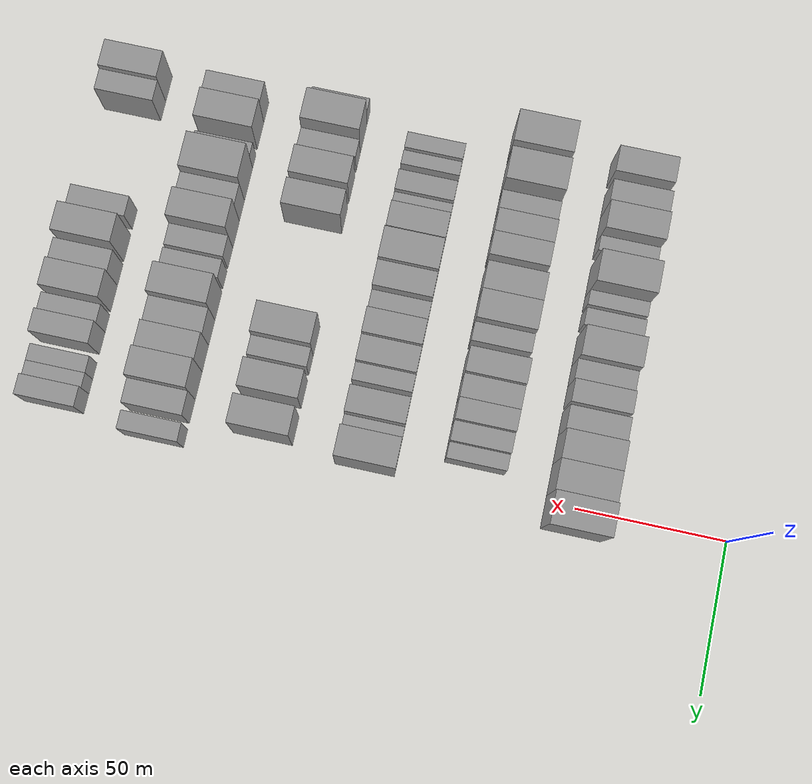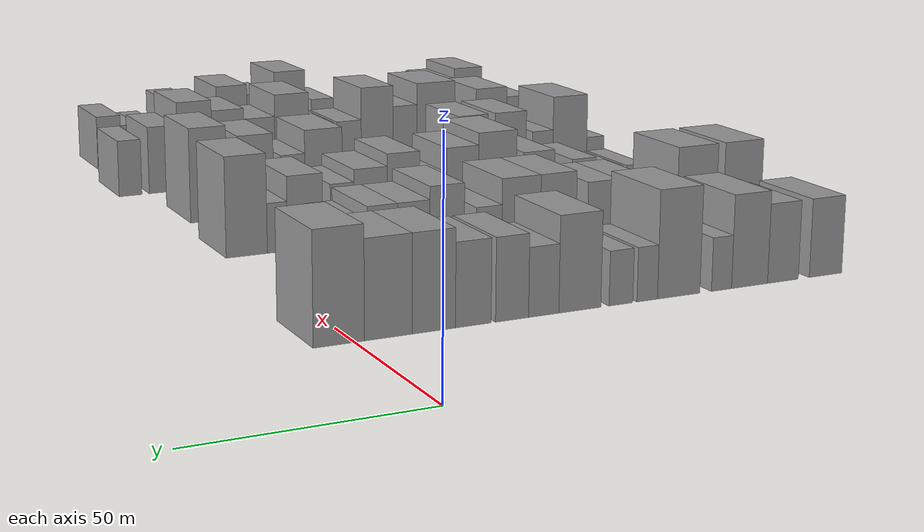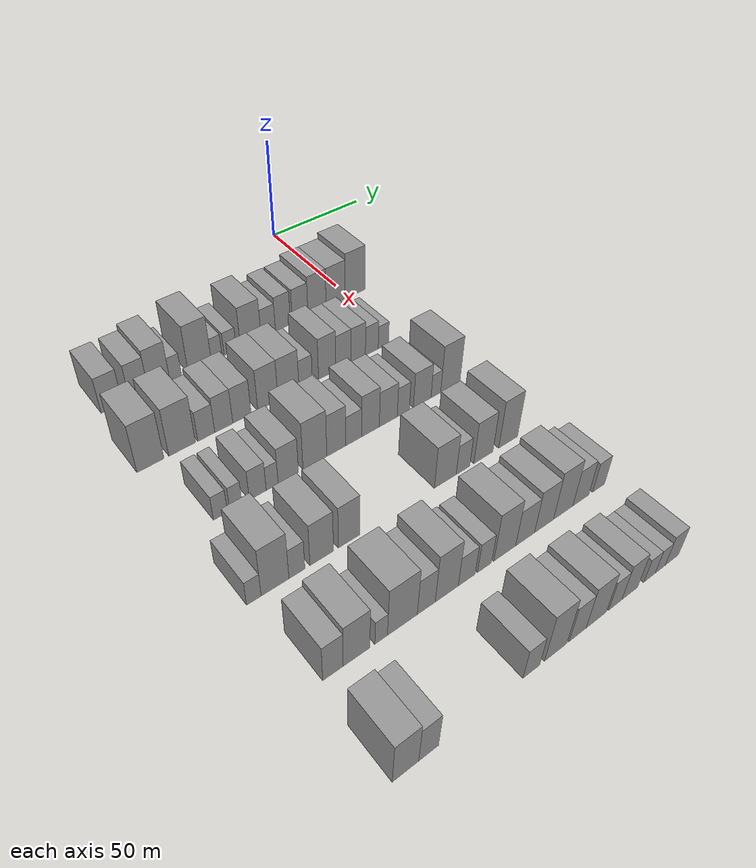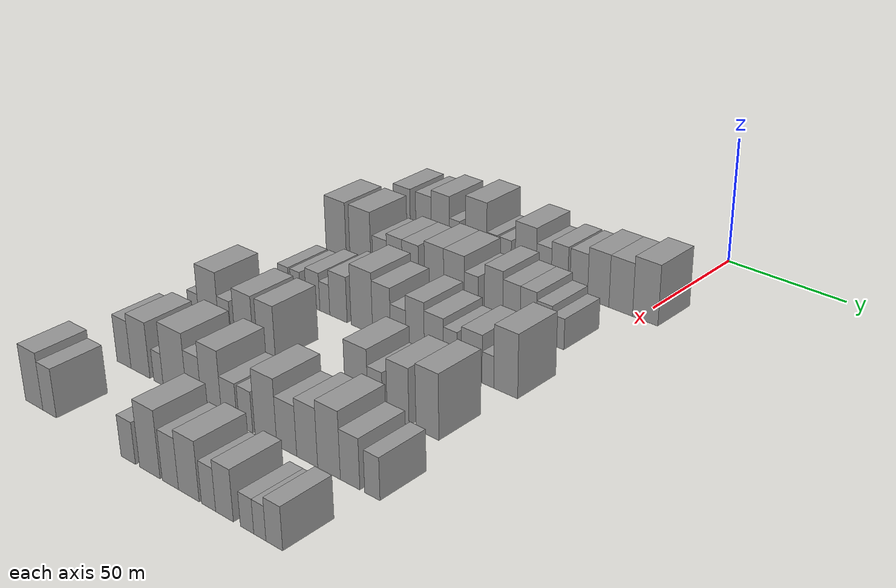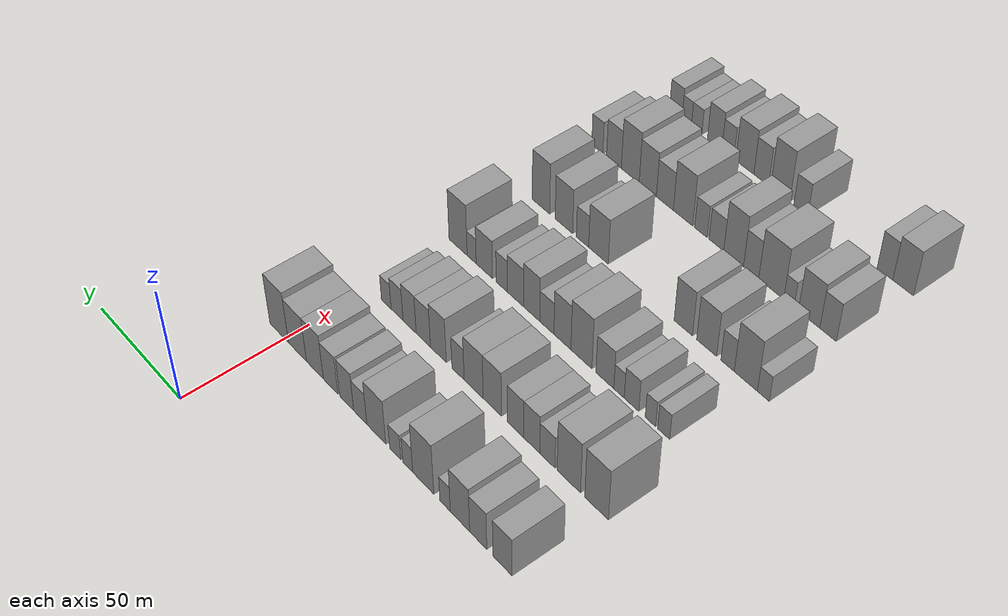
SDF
<sdf version="1.6">
 <world name="default">
  <model name="building_53">
   <static>1</static>
   <pose>50.0000 -114.6435 0 0.000000 0.000000 0.000000</pose>
   <link name="link">
    <pose>0 0 9.00 0 0 0</pose>
    <collision name="collision"><geometry><box><size>20.0000 8.9400 18.0000</size></box></geometry></collision>
    <visual name="visual">
     <cast_shadows>0</cast_shadows>
     <geometry><box><size>20.0000 8.9400 18.0000</size></box></geometry>
     <material>
      <script>
       <uri>model://grey_wall/materials/scripts</uri>
       <uri>model://grey_wall/materials/textures</uri>
       <name>vrc/grey_wall</name>
      </script>
     </material>
    </visual>
   </link>
  </model>
  <model name="building_54">
   <static>1</static>
   <pose>50.0000 -103.0503 0 0.000000 0.000000 0.000000</pose>
   <link name="link">
    <pose>0 0 9.00 0 0 0</pose>
    <collision name="collision"><geometry><box><size>20.0000 8.2464 18.0000</size></box></geometry></collision>
    <visual name="visual">
     <cast_shadows>0</cast_shadows>
     <geometry><box><size>20.0000 8.2464 18.0000</size></box></geometry>
     <material>
      <script>
       <uri>model://grey_wall/materials/scripts</uri>
       <uri>model://grey_wall/materials/textures</uri>
       <name>vrc/grey_wall</name>
      </script>
     </material>
    </visual>
   </link>
  </model>
  <model name="building_55">
   <static>1</static>
   <pose>50.0000 -94.1643 0 0.000000 0.000000 0.000000</pose>
   <link name="link">
    <pose>0 0 10.50 0 0 0</pose>
    <collision name="collision"><geometry><box><size>20.0000 9.5256 21.0000</size></box></geometry></collision>
    <visual name="visual">
     <cast_shadows>0</cast_shadows>
     <geometry><box><size>20.0000 9.5256 21.0000</size></box></geometry>
     <material>
      <script>
       <uri>model://grey_wall/materials/scripts</uri>
       <uri>model://grey_wall/materials/textures</uri>
       <name>vrc/grey_wall</name>
      </script>
     </material>
    </visual>
   </link>
  </model>
  <model name="building_56">
   <static>1</static>
   <pose>50.0000 -86.7919 0 0.000000 0.000000 0.000000</pose>
   <link name="link">
    <pose>0 0 6.00 0 0 0</pose>
    <collision name="collision"><geometry><box><size>20.0000 5.2192 12.0000</size></box></geometry></collision>
    <visual name="visual">
     <cast_shadows>0</cast_shadows>
     <geometry><box><size>20.0000 5.2192 12.0000</size></box></geometry>
     <material>
      <script>
       <uri>model://grey_wall/materials/scripts</uri>
       <uri>model://grey_wall/materials/textures</uri>
       <name>vrc/grey_wall</name>
      </script>
     </material>
    </visual>
   </link>
  </model>
  <model name="building_57">
   <static>1</static>
   <pose>50.0000 -75.7936 0 0.000000 0.000000 0.000000</pose>
   <link name="link">
    <pose>0 0 12.00 0 0 0</pose>
    <collision name="collision"><geometry><box><size>20.0000 10.7773 24.0000</size></box></geometry></collision>
    <visual name="visual">
     <cast_shadows>0</cast_shadows>
     <geometry><box><size>20.0000 10.7773 24.0000</size></box></geometry>
     <material>
      <script>
       <uri>model://grey_wall/materials/scripts</uri>
       <uri>model://grey_wall/materials/textures</uri>
       <name>vrc/grey_wall</name>
      </script>
     </material>
    </visual>
   </link>
  </model>
  <model name="building_58">
   <static>1</static>
   <pose>50.0000 -67.8428 0 0.000000 0.000000 0.000000</pose>
   <link name="link">
    <pose>0 0 6.00 0 0 0</pose>
    <collision name="collision"><geometry><box><size>20.0000 5.1243 12.0000</size></box></geometry></collision>
    <visual name="visual">
     <cast_shadows>0</cast_shadows>
     <geometry><box><size>20.0000 5.1243 12.0000</size></box></geometry>
     <material>
      <script>
       <uri>model://grey_wall/materials/scripts</uri>
       <uri>model://grey_wall/materials/textures</uri>
       <name>vrc/grey_wall</name>
      </script>
     </material>
    </visual>
   </link>
  </model>
  <model name="building_59">
   <static>1</static>
   <pose>50.0000 -61.3414 0 0.000000 0.000000 0.000000</pose>
   <link name="link">
    <pose>0 0 6.00 0 0 0</pose>
    <collision name="collision"><geometry><box><size>20.0000 5.8786 12.0000</size></box></geometry></collision>
    <visual name="visual">
     <cast_shadows>0</cast_shadows>
     <geometry><box><size>20.0000 5.8786 12.0000</size></box></geometry>
     <material>
      <script>
       <uri>model://grey_wall/materials/scripts</uri>
       <uri>model://grey_wall/materials/textures</uri>
       <name>vrc/grey_wall</name>
      </script>
     </material>
    </visual>
   </link>
  </model>
  <model name="building_60">
   <static>1</static>
   <pose>50.0000 -51.3345 0 0.000000 0.000000 0.000000</pose>
   <link name="link">
    <pose>0 0 10.50 0 0 0</pose>
    <collision name="collision"><geometry><box><size>20.0000 10.1353 21.0000</size></box></geometry></collision>
    <visual name="visual">
     <cast_shadows>0</cast_shadows>
     <geometry><box><size>20.0000 10.1353 21.0000</size></box></geometry>
     <material>
      <script>
       <uri>model://grey_wall/materials/scripts</uri>
       <uri>model://grey_wall/materials/textures</uri>
       <name>vrc/grey_wall</name>
      </script>
     </material>
    </visual>
   </link>
  </model>
  <model name="building_61">
   <static>1</static>
   <pose>50.0000 -42.6842 0 0.000000 0.000000 0.000000</pose>
   <link name="link">
    <pose>0 0 7.50 0 0 0</pose>
    <collision name="collision"><geometry><box><size>20.0000 7.1653 15.0000</size></box></geometry></collision>
    <visual name="visual">
     <cast_shadows>0</cast_shadows>
     <geometry><box><size>20.0000 7.1653 15.0000</size></box></geometry>
     <material>
      <script>
       <uri>model://grey_wall/materials/scripts</uri>
       <uri>model://grey_wall/materials/textures</uri>
       <name>vrc/grey_wall</name>
      </script>
     </material>
    </visual>
   </link>
  </model>
  <model name="building_62">
   <static>1</static>
   <pose>50.0000 -35.2547 0 0.000000 0.000000 0.000000</pose>
   <link name="link">
    <pose>0 0 9.00 0 0 0</pose>
    <collision name="collision"><geometry><box><size>20.0000 7.6937 18.0000</size></box></geometry></collision>
    <visual name="visual">
     <cast_shadows>0</cast_shadows>
     <geometry><box><size>20.0000 7.6937 18.0000</size></box></geometry>
     <material>
      <script>
       <uri>model://grey_wall/materials/scripts</uri>
       <uri>model://grey_wall/materials/textures</uri>
       <name>vrc/grey_wall</name>
      </script>
     </material>
    </visual>
   </link>
  </model>
  <model name="building_63">
   <static>1</static>
   <pose>50.0000 -26.3390 0 0.000000 0.000000 0.000000</pose>
   <link name="link">
    <pose>0 0 9.00 0 0 0</pose>
    <collision name="collision"><geometry><box><size>20.0000 8.1377 18.0000</size></box></geometry></collision>
    <visual name="visual">
     <cast_shadows>0</cast_shadows>
     <geometry><box><size>20.0000 8.1377 18.0000</size></box></geometry>
     <material>
      <script>
       <uri>model://grey_wall/materials/scripts</uri>
       <uri>model://grey_wall/materials/textures</uri>
       <name>vrc/grey_wall</name>
      </script>
     </material>
    </visual>
   </link>
  </model>
  <model name="building_64">
   <static>1</static>
   <pose>50.0000 -17.4439 0 0.000000 0.000000 0.000000</pose>
   <link name="link">
    <pose>0 0 10.50 0 0 0</pose>
    <collision name="collision"><geometry><box><size>20.0000 9.6526 21.0000</size></box></geometry></collision>
    <visual name="visual">
     <cast_shadows>0</cast_shadows>
     <geometry><box><size>20.0000 9.6526 21.0000</size></box></geometry>
     <material>
      <script>
       <uri>model://grey_wall/materials/scripts</uri>
       <uri>model://grey_wall/materials/textures</uri>
       <name>vrc/grey_wall</name>
      </script>
     </material>
    </visual>
   </link>
  </model>
  <model name="building_65">
   <static>1</static>
   <pose>50.0000 -7.3971 0 0.000000 0.000000 0.000000</pose>
   <link name="link">
    <pose>0 0 10.50 0 0 0</pose>
    <collision name="collision"><geometry><box><size>20.0000 10.4410 21.0000</size></box></geometry></collision>
    <visual name="visual">
     <cast_shadows>0</cast_shadows>
     <geometry><box><size>20.0000 10.4410 21.0000</size></box></geometry>
     <material>
      <script>
       <uri>model://grey_wall/materials/scripts</uri>
       <uri>model://grey_wall/materials/textures</uri>
       <name>vrc/grey_wall</name>
      </script>
     </material>
    </visual>
   </link>
  </model>
  <model name="building_66">
   <static>1</static>
   <pose>50.0000 3.3066 0 0.000000 0.000000 0.000000</pose>
   <link name="link">
    <pose>0 0 12.00 0 0 0</pose>
    <collision name="collision"><geometry><box><size>20.0000 10.9665 24.0000</size></box></geometry></collision>
    <visual name="visual">
     <cast_shadows>0</cast_shadows>
     <geometry><box><size>20.0000 10.9665 24.0000</size></box></geometry>
     <material>
      <script>
       <uri>model://grey_wall/materials/scripts</uri>
       <uri>model://grey_wall/materials/textures</uri>
       <name>vrc/grey_wall</name>
      </script>
     </material>
    </visual>
   </link>
  </model>
  <model name="building_172">
   <static>1</static>
   <pose>85.0000 -116.4584 0 0.000000 0.000000 0.000000</pose>
   <link name="link">
    <pose>0 0 12.00 0 0 0</pose>
    <collision name="collision"><geometry><box><size>20.0000 10.9451 24.0000</size></box></geometry></collision>
    <visual name="visual">
     <cast_shadows>0</cast_shadows>
     <geometry><box><size>20.0000 10.9451 24.0000</size></box></geometry>
     <material>
      <script>
       <uri>model://grey_wall/materials/scripts</uri>
       <uri>model://grey_wall/materials/textures</uri>
       <name>vrc/grey_wall</name>
      </script>
     </material>
    </visual>
   </link>
  </model>
  <model name="building_173">
   <static>1</static>
   <pose>85.0000 -103.4264 0 0.000000 0.000000 0.000000</pose>
   <link name="link">
    <pose>0 0 12.00 0 0 0</pose>
    <collision name="collision"><geometry><box><size>20.0000 11.1188 24.0000</size></box></geometry></collision>
    <visual name="visual">
     <cast_shadows>0</cast_shadows>
     <geometry><box><size>20.0000 11.1188 24.0000</size></box></geometry>
     <material>
      <script>
       <uri>model://grey_wall/materials/scripts</uri>
       <uri>model://grey_wall/materials/textures</uri>
       <name>vrc/grey_wall</name>
      </script>
     </material>
    </visual>
   </link>
  </model>
  <model name="building_174">
   <static>1</static>
   <pose>85.0000 -93.2065 0 0.000000 0.000000 0.000000</pose>
   <link name="link">
    <pose>0 0 7.50 0 0 0</pose>
    <collision name="collision"><geometry><box><size>20.0000 7.3210 15.0000</size></box></geometry></collision>
    <visual name="visual">
     <cast_shadows>0</cast_shadows>
     <geometry><box><size>20.0000 7.3210 15.0000</size></box></geometry>
     <material>
      <script>
       <uri>model://grey_wall/materials/scripts</uri>
       <uri>model://grey_wall/materials/textures</uri>
       <name>vrc/grey_wall</name>
      </script>
     </material>
    </visual>
   </link>
  </model>
  <model name="building_175">
   <static>1</static>
   <pose>85.0000 -85.6010 0 0.000000 0.000000 0.000000</pose>
   <link name="link">
    <pose>0 0 9.00 0 0 0</pose>
    <collision name="collision"><geometry><box><size>20.0000 7.8901 18.0000</size></box></geometry></collision>
    <visual name="visual">
     <cast_shadows>0</cast_shadows>
     <geometry><box><size>20.0000 7.8901 18.0000</size></box></geometry>
     <material>
      <script>
       <uri>model://grey_wall/materials/scripts</uri>
       <uri>model://grey_wall/materials/textures</uri>
       <name>vrc/grey_wall</name>
      </script>
     </material>
    </visual>
   </link>
  </model>
  <model name="building_176">
   <static>1</static>
   <pose>85.0000 -77.5546 0 0.000000 0.000000 0.000000</pose>
   <link name="link">
    <pose>0 0 9.00 0 0 0</pose>
    <collision name="collision"><geometry><box><size>20.0000 8.2029 18.0000</size></box></geometry></collision>
    <visual name="visual">
     <cast_shadows>0</cast_shadows>
     <geometry><box><size>20.0000 8.2029 18.0000</size></box></geometry>
     <material>
      <script>
       <uri>model://grey_wall/materials/scripts</uri>
       <uri>model://grey_wall/materials/textures</uri>
       <name>vrc/grey_wall</name>
      </script>
     </material>
    </visual>
   </link>
  </model>
  <model name="building_177">
   <static>1</static>
   <pose>85.0000 -65.7735 0 0.000000 0.000000 0.000000</pose>
   <link name="link">
    <pose>0 0 10.50 0 0 0</pose>
    <collision name="collision"><geometry><box><size>20.0000 9.3593 21.0000</size></box></geometry></collision>
    <visual name="visual">
     <cast_shadows>0</cast_shadows>
     <geometry><box><size>20.0000 9.3593 21.0000</size></box></geometry>
     <material>
      <script>
       <uri>model://grey_wall/materials/scripts</uri>
       <uri>model://grey_wall/materials/textures</uri>
       <name>vrc/grey_wall</name>
      </script>
     </material>
    </visual>
   </link>
  </model>
  <model name="building_178">
   <static>1</static>
   <pose>85.0000 -56.1351 0 0.000000 0.000000 0.000000</pose>
   <link name="link">
    <pose>0 0 10.50 0 0 0</pose>
    <collision name="collision"><geometry><box><size>20.0000 9.9176 21.0000</size></box></geometry></collision>
    <visual name="visual">
     <cast_shadows>0</cast_shadows>
     <geometry><box><size>20.0000 9.9176 21.0000</size></box></geometry>
     <material>
      <script>
       <uri>model://grey_wall/materials/scripts</uri>
       <uri>model://grey_wall/materials/textures</uri>
       <name>vrc/grey_wall</name>
      </script>
     </material>
    </visual>
   </link>
  </model>
  <model name="building_179">
   <static>1</static>
   <pose>85.0000 -47.9434 0 0.000000 0.000000 0.000000</pose>
   <link name="link">
    <pose>0 0 7.50 0 0 0</pose>
    <collision name="collision"><geometry><box><size>20.0000 6.4659 15.0000</size></box></geometry></collision>
    <visual name="visual">
     <cast_shadows>0</cast_shadows>
     <geometry><box><size>20.0000 6.4659 15.0000</size></box></geometry>
     <material>
      <script>
       <uri>model://grey_wall/materials/scripts</uri>
       <uri>model://grey_wall/materials/textures</uri>
       <name>vrc/grey_wall</name>
      </script>
     </material>
    </visual>
   </link>
  </model>
  <model name="building_180">
   <static>1</static>
   <pose>85.0000 -37.4590 0 0.000000 0.000000 0.000000</pose>
   <link name="link">
    <pose>0 0 10.50 0 0 0</pose>
    <collision name="collision"><geometry><box><size>20.0000 8.5029 21.0000</size></box></geometry></collision>
    <visual name="visual">
     <cast_shadows>0</cast_shadows>
     <geometry><box><size>20.0000 8.5029 21.0000</size></box></geometry>
     <material>
      <script>
       <uri>model://grey_wall/materials/scripts</uri>
       <uri>model://grey_wall/materials/textures</uri>
       <name>vrc/grey_wall</name>
      </script>
     </material>
    </visual>
   </link>
  </model>
  <model name="building_181">
   <static>1</static>
   <pose>85.0000 -29.2790 0 0.000000 0.000000 0.000000</pose>
   <link name="link">
    <pose>0 0 9.00 0 0 0</pose>
    <collision name="collision"><geometry><box><size>20.0000 7.8571 18.0000</size></box></geometry></collision>
    <visual name="visual">
     <cast_shadows>0</cast_shadows>
     <geometry><box><size>20.0000 7.8571 18.0000</size></box></geometry>
     <material>
      <script>
       <uri>model://grey_wall/materials/scripts</uri>
       <uri>model://grey_wall/materials/textures</uri>
       <name>vrc/grey_wall</name>
      </script>
     </material>
    </visual>
   </link>
  </model>
  <model name="building_182">
   <static>1</static>
   <pose>85.0000 -21.7177 0 0.000000 0.000000 0.000000</pose>
   <link name="link">
    <pose>0 0 9.00 0 0 0</pose>
    <collision name="collision"><geometry><box><size>20.0000 7.2654 18.0000</size></box></geometry></collision>
    <visual name="visual">
     <cast_shadows>0</cast_shadows>
     <geometry><box><size>20.0000 7.2654 18.0000</size></box></geometry>
     <material>
      <script>
       <uri>model://grey_wall/materials/scripts</uri>
       <uri>model://grey_wall/materials/textures</uri>
       <name>vrc/grey_wall</name>
      </script>
     </material>
    </visual>
   </link>
  </model>
  <model name="building_183">
   <static>1</static>
   <pose>85.0000 -14.7252 0 0.000000 0.000000 0.000000</pose>
   <link name="link">
    <pose>0 0 7.50 0 0 0</pose>
    <collision name="collision"><geometry><box><size>20.0000 6.7194 15.0000</size></box></geometry></collision>
    <visual name="visual">
     <cast_shadows>0</cast_shadows>
     <geometry><box><size>20.0000 6.7194 15.0000</size></box></geometry>
     <material>
      <script>
       <uri>model://grey_wall/materials/scripts</uri>
       <uri>model://grey_wall/materials/textures</uri>
       <name>vrc/grey_wall</name>
      </script>
     </material>
    </visual>
   </link>
  </model>
  <model name="building_184">
   <static>1</static>
   <pose>85.0000 -8.6392 0 0.000000 0.000000 0.000000</pose>
   <link name="link">
    <pose>0 0 6.00 0 0 0</pose>
    <collision name="collision"><geometry><box><size>20.0000 5.4527 12.0000</size></box></geometry></collision>
    <visual name="visual">
     <cast_shadows>0</cast_shadows>
     <geometry><box><size>20.0000 5.4527 12.0000</size></box></geometry>
     <material>
      <script>
       <uri>model://grey_wall/materials/scripts</uri>
       <uri>model://grey_wall/materials/textures</uri>
       <name>vrc/grey_wall</name>
      </script>
     </material>
    </visual>
   </link>
  </model>
  <model name="building_299">
   <static>1</static>
   <pose>120.0000 -108.1491 0 0.000000 0.000000 0.000000</pose>
   <link name="link">
    <pose>0 0 6.00 0 0 0</pose>
    <collision name="collision"><geometry><box><size>20.0000 5.5658 12.0000</size></box></geometry></collision>
    <visual name="visual">
     <cast_shadows>0</cast_shadows>
     <geometry><box><size>20.0000 5.5658 12.0000</size></box></geometry>
     <material>
      <script>
       <uri>model://grey_wall/materials/scripts</uri>
       <uri>model://grey_wall/materials/textures</uri>
       <name>vrc/grey_wall</name>
      </script>
     </material>
    </visual>
   </link>
  </model>
  <model name="building_300">
   <static>1</static>
   <pose>120.0000 -101.9015 0 0.000000 0.000000 0.000000</pose>
   <link name="link">
    <pose>0 0 6.00 0 0 0</pose>
    <collision name="collision"><geometry><box><size>20.0000 4.9295 12.0000</size></box></geometry></collision>
    <visual name="visual">
     <cast_shadows>0</cast_shadows>
     <geometry><box><size>20.0000 4.9295 12.0000</size></box></geometry>
     <material>
      <script>
       <uri>model://grey_wall/materials/scripts</uri>
       <uri>model://grey_wall/materials/textures</uri>
       <name>vrc/grey_wall</name>
      </script>
     </material>
    </visual>
   </link>
  </model>
  <model name="building_301">
   <static>1</static>
   <pose>120.0000 -92.9369 0 0.000000 0.000000 0.000000</pose>
   <link name="link">
    <pose>0 0 7.50 0 0 0</pose>
    <collision name="collision"><geometry><box><size>20.0000 6.9997 15.0000</size></box></geometry></collision>
    <visual name="visual">
     <cast_shadows>0</cast_shadows>
     <geometry><box><size>20.0000 6.9997 15.0000</size></box></geometry>
     <material>
      <script>
       <uri>model://grey_wall/materials/scripts</uri>
       <uri>model://grey_wall/materials/textures</uri>
       <name>vrc/grey_wall</name>
      </script>
     </material>
    </visual>
   </link>
  </model>
  <model name="building_302">
   <static>1</static>
   <pose>120.0000 -86.9117 0 0.000000 0.000000 0.000000</pose>
   <link name="link">
    <pose>0 0 6.00 0 0 0</pose>
    <collision name="collision"><geometry><box><size>20.0000 5.0507 12.0000</size></box></geometry></collision>
    <visual name="visual">
     <cast_shadows>0</cast_shadows>
     <geometry><box><size>20.0000 5.0507 12.0000</size></box></geometry>
     <material>
      <script>
       <uri>model://grey_wall/materials/scripts</uri>
       <uri>model://grey_wall/materials/textures</uri>
       <name>vrc/grey_wall</name>
      </script>
     </material>
    </visual>
   </link>
  </model>
  <model name="building_303">
   <static>1</static>
   <pose>120.0000 -80.0144 0 0.000000 0.000000 0.000000</pose>
   <link name="link">
    <pose>0 0 9.00 0 0 0</pose>
    <collision name="collision"><geometry><box><size>20.0000 8.7440 18.0000</size></box></geometry></collision>
    <visual name="visual">
     <cast_shadows>0</cast_shadows>
     <geometry><box><size>20.0000 8.7440 18.0000</size></box></geometry>
     <material>
      <script>
       <uri>model://grey_wall/materials/scripts</uri>
       <uri>model://grey_wall/materials/textures</uri>
       <name>vrc/grey_wall</name>
      </script>
     </material>
    </visual>
   </link>
  </model>
  <model name="building_304">
   <static>1</static>
   <pose>120.0000 -68.3629 0 0.000000 0.000000 0.000000</pose>
   <link name="link">
    <pose>0 0 12.00 0 0 0</pose>
    <collision name="collision"><geometry><box><size>20.0000 10.5590 24.0000</size></box></geometry></collision>
    <visual name="visual">
     <cast_shadows>0</cast_shadows>
     <geometry><box><size>20.0000 10.5590 24.0000</size></box></geometry>
     <material>
      <script>
       <uri>model://grey_wall/materials/scripts</uri>
       <uri>model://grey_wall/materials/textures</uri>
       <name>vrc/grey_wall</name>
      </script>
     </material>
    </visual>
   </link>
  </model>
  <model name="building_305">
   <static>1</static>
   <pose>120.0000 -58.7427 0 0.000000 0.000000 0.000000</pose>
   <link name="link">
    <pose>0 0 10.50 0 0 0</pose>
    <collision name="collision"><geometry><box><size>20.0000 8.6813 21.0000</size></box></geometry></collision>
    <visual name="visual">
     <cast_shadows>0</cast_shadows>
     <geometry><box><size>20.0000 8.6813 21.0000</size></box></geometry>
     <material>
      <script>
       <uri>model://grey_wall/materials/scripts</uri>
       <uri>model://grey_wall/materials/textures</uri>
       <name>vrc/grey_wall</name>
      </script>
     </material>
    </visual>
   </link>
  </model>
  <model name="building_306">
   <static>1</static>
   <pose>120.0000 -50.7534 0 0.000000 0.000000 0.000000</pose>
   <link name="link">
    <pose>0 0 7.50 0 0 0</pose>
    <collision name="collision"><geometry><box><size>20.0000 7.2975 15.0000</size></box></geometry></collision>
    <visual name="visual">
     <cast_shadows>0</cast_shadows>
     <geometry><box><size>20.0000 7.2975 15.0000</size></box></geometry>
     <material>
      <script>
       <uri>model://grey_wall/materials/scripts</uri>
       <uri>model://grey_wall/materials/textures</uri>
       <name>vrc/grey_wall</name>
      </script>
     </material>
    </visual>
   </link>
  </model>
  <model name="building_307">
   <static>1</static>
   <pose>120.0000 -42.8588 0 0.000000 0.000000 0.000000</pose>
   <link name="link">
    <pose>0 0 10.50 0 0 0</pose>
    <collision name="collision"><geometry><box><size>20.0000 8.4917 21.0000</size></box></geometry></collision>
    <visual name="visual">
     <cast_shadows>0</cast_shadows>
     <geometry><box><size>20.0000 8.4917 21.0000</size></box></geometry>
     <material>
      <script>
       <uri>model://grey_wall/materials/scripts</uri>
       <uri>model://grey_wall/materials/textures</uri>
       <name>vrc/grey_wall</name>
      </script>
     </material>
    </visual>
   </link>
  </model>
  <model name="building_308">
   <static>1</static>
   <pose>120.0000 -34.2386 0 0.000000 0.000000 0.000000</pose>
   <link name="link">
    <pose>0 0 9.00 0 0 0</pose>
    <collision name="collision"><geometry><box><size>20.0000 8.7486 18.0000</size></box></geometry></collision>
    <visual name="visual">
     <cast_shadows>0</cast_shadows>
     <geometry><box><size>20.0000 8.7486 18.0000</size></box></geometry>
     <material>
      <script>
       <uri>model://grey_wall/materials/scripts</uri>
       <uri>model://grey_wall/materials/textures</uri>
       <name>vrc/grey_wall</name>
      </script>
     </material>
    </visual>
   </link>
  </model>
  <model name="building_309">
   <static>1</static>
   <pose>120.0000 -26.8386 0 0.000000 0.000000 0.000000</pose>
   <link name="link">
    <pose>0 0 7.50 0 0 0</pose>
    <collision name="collision"><geometry><box><size>20.0000 6.0514 15.0000</size></box></geometry></collision>
    <visual name="visual">
     <cast_shadows>0</cast_shadows>
     <geometry><box><size>20.0000 6.0514 15.0000</size></box></geometry>
     <material>
      <script>
       <uri>model://grey_wall/materials/scripts</uri>
       <uri>model://grey_wall/materials/textures</uri>
       <name>vrc/grey_wall</name>
      </script>
     </material>
    </visual>
   </link>
  </model>
  <model name="building_310">
   <static>1</static>
   <pose>120.0000 -17.3308 0 0.000000 0.000000 0.000000</pose>
   <link name="link">
    <pose>0 0 9.00 0 0 0</pose>
    <collision name="collision"><geometry><box><size>20.0000 8.9642 18.0000</size></box></geometry></collision>
    <visual name="visual">
     <cast_shadows>0</cast_shadows>
     <geometry><box><size>20.0000 8.9642 18.0000</size></box></geometry>
     <material>
      <script>
       <uri>model://grey_wall/materials/scripts</uri>
       <uri>model://grey_wall/materials/textures</uri>
       <name>vrc/grey_wall</name>
      </script>
     </material>
    </visual>
   </link>
  </model>
  <model name="building_311">
   <static>1</static>
   <pose>120.0000 -10.3189 0 0.000000 0.000000 0.000000</pose>
   <link name="link">
    <pose>0 0 6.00 0 0 0</pose>
    <collision name="collision"><geometry><box><size>20.0000 5.0596 12.0000</size></box></geometry></collision>
    <visual name="visual">
     <cast_shadows>0</cast_shadows>
     <geometry><box><size>20.0000 5.0596 12.0000</size></box></geometry>
     <material>
      <script>
       <uri>model://grey_wall/materials/scripts</uri>
       <uri>model://grey_wall/materials/textures</uri>
       <name>vrc/grey_wall</name>
      </script>
     </material>
    </visual>
   </link>
  </model>
  <model name="building_312">
   <static>1</static>
   <pose>120.0000 -2.7162 0 0.000000 0.000000 0.000000</pose>
   <link name="link">
    <pose>0 0 12.00 0 0 0</pose>
    <collision name="collision"><geometry><box><size>20.0000 10.1458 24.0000</size></box></geometry></collision>
    <visual name="visual">
     <cast_shadows>0</cast_shadows>
     <geometry><box><size>20.0000 10.1458 24.0000</size></box></geometry>
     <material>
      <script>
       <uri>model://grey_wall/materials/scripts</uri>
       <uri>model://grey_wall/materials/textures</uri>
       <name>vrc/grey_wall</name>
      </script>
     </material>
    </visual>
   </link>
  </model>
  <model name="building_421">
   <static>1</static>
   <pose>155.0000 -116.9389 0 0.000000 0.000000 0.000000</pose>
   <link name="link">
    <pose>0 0 6.00 0 0 0</pose>
    <collision name="collision"><geometry><box><size>20.0000 5.4526 12.0000</size></box></geometry></collision>
    <visual name="visual">
     <cast_shadows>0</cast_shadows>
     <geometry><box><size>20.0000 5.4526 12.0000</size></box></geometry>
     <material>
      <script>
       <uri>model://grey_wall/materials/scripts</uri>
       <uri>model://grey_wall/materials/textures</uri>
       <name>vrc/grey_wall</name>
      </script>
     </material>
    </visual>
   </link>
  </model>
  <model name="building_422">
   <static>1</static>
   <pose>155.0000 -108.8960 0 0.000000 0.000000 0.000000</pose>
   <link name="link">
    <pose>0 0 12.00 0 0 0</pose>
    <collision name="collision"><geometry><box><size>20.0000 10.6330 24.0000</size></box></geometry></collision>
    <visual name="visual">
     <cast_shadows>0</cast_shadows>
     <geometry><box><size>20.0000 10.6330 24.0000</size></box></geometry>
     <material>
      <script>
       <uri>model://grey_wall/materials/scripts</uri>
       <uri>model://grey_wall/materials/textures</uri>
       <name>vrc/grey_wall</name>
      </script>
     </material>
    </visual>
   </link>
  </model>
  <model name="building_423">
   <static>1</static>
   <pose>155.0000 -100.4445 0 0.000000 0.000000 0.000000</pose>
   <link name="link">
    <pose>0 0 7.50 0 0 0</pose>
    <collision name="collision"><geometry><box><size>20.0000 6.2701 15.0000</size></box></geometry></collision>
    <visual name="visual">
     <cast_shadows>0</cast_shadows>
     <geometry><box><size>20.0000 6.2701 15.0000</size></box></geometry>
     <material>
      <script>
       <uri>model://grey_wall/materials/scripts</uri>
       <uri>model://grey_wall/materials/textures</uri>
       <name>vrc/grey_wall</name>
      </script>
     </material>
    </visual>
   </link>
  </model>
  <model name="building_424">
   <static>1</static>
   <pose>155.0000 -90.5461 0 0.000000 0.000000 0.000000</pose>
   <link name="link">
    <pose>0 0 10.50 0 0 0</pose>
    <collision name="collision"><geometry><box><size>20.0000 9.5267 21.0000</size></box></geometry></collision>
    <visual name="visual">
     <cast_shadows>0</cast_shadows>
     <geometry><box><size>20.0000 9.5267 21.0000</size></box></geometry>
     <material>
      <script>
       <uri>model://grey_wall/materials/scripts</uri>
       <uri>model://grey_wall/materials/textures</uri>
       <name>vrc/grey_wall</name>
      </script>
     </material>
    </visual>
   </link>
  </model>
  <model name="building_425">
   <static>1</static>
   <pose>155.0000 -79.3172 0 0.000000 0.000000 0.000000</pose>
   <link name="link">
    <pose>0 0 10.50 0 0 0</pose>
    <collision name="collision"><geometry><box><size>20.0000 8.9310 21.0000</size></box></geometry></collision>
    <visual name="visual">
     <cast_shadows>0</cast_shadows>
     <geometry><box><size>20.0000 8.9310 21.0000</size></box></geometry>
     <material>
      <script>
       <uri>model://grey_wall/materials/scripts</uri>
       <uri>model://grey_wall/materials/textures</uri>
       <name>vrc/grey_wall</name>
      </script>
     </material>
    </visual>
   </link>
  </model>
  <model name="building_426">
   <static>1</static>
   <pose>155.0000 -36.3717 0 0.000000 0.000000 0.000000</pose>
   <link name="link">
    <pose>0 0 10.50 0 0 0</pose>
    <collision name="collision"><geometry><box><size>20.0000 10.3200 21.0000</size></box></geometry></collision>
    <visual name="visual">
     <cast_shadows>0</cast_shadows>
     <geometry><box><size>20.0000 10.3200 21.0000</size></box></geometry>
     <material>
      <script>
       <uri>model://grey_wall/materials/scripts</uri>
       <uri>model://grey_wall/materials/textures</uri>
       <name>vrc/grey_wall</name>
      </script>
     </material>
    </visual>
   </link>
  </model>
  <model name="building_427">
   <static>1</static>
   <pose>155.0000 -27.9300 0 0.000000 0.000000 0.000000</pose>
   <link name="link">
    <pose>0 0 7.50 0 0 0</pose>
    <collision name="collision"><geometry><box><size>20.0000 6.5632 15.0000</size></box></geometry></collision>
    <visual name="visual">
     <cast_shadows>0</cast_shadows>
     <geometry><box><size>20.0000 6.5632 15.0000</size></box></geometry>
     <material>
      <script>
       <uri>model://grey_wall/materials/scripts</uri>
       <uri>model://grey_wall/materials/textures</uri>
       <name>vrc/grey_wall</name>
      </script>
     </material>
    </visual>
   </link>
  </model>
  <model name="building_428">
   <static>1</static>
   <pose>155.0000 -17.9078 0 0.000000 0.000000 0.000000</pose>
   <link name="link">
    <pose>0 0 10.50 0 0 0</pose>
    <collision name="collision"><geometry><box><size>20.0000 9.4812 21.0000</size></box></geometry></collision>
    <visual name="visual">
     <cast_shadows>0</cast_shadows>
     <geometry><box><size>20.0000 9.4812 21.0000</size></box></geometry>
     <material>
      <script>
       <uri>model://grey_wall/materials/scripts</uri>
       <uri>model://grey_wall/materials/textures</uri>
       <name>vrc/grey_wall</name>
      </script>
     </material>
    </visual>
   </link>
  </model>
  <model name="building_429">
   <static>1</static>
   <pose>155.0000 -5.3427 0 0.000000 0.000000 0.000000</pose>
   <link name="link">
    <pose>0 0 12.00 0 0 0</pose>
    <collision name="collision"><geometry><box><size>20.0000 9.6491 24.0000</size></box></geometry></collision>
    <visual name="visual">
     <cast_shadows>0</cast_shadows>
     <geometry><box><size>20.0000 9.6491 24.0000</size></box></geometry>
     <material>
      <script>
       <uri>model://grey_wall/materials/scripts</uri>
       <uri>model://grey_wall/materials/textures</uri>
       <name>vrc/grey_wall</name>
      </script>
     </material>
    </visual>
   </link>
  </model>
  <model name="building_544">
   <static>1</static>
   <pose>190.0000 -111.6887 0 0.000000 0.000000 0.000000</pose>
   <link name="link">
    <pose>0 0 9.00 0 0 0</pose>
    <collision name="collision"><geometry><box><size>20.0000 7.5203 18.0000</size></box></geometry></collision>
    <visual name="visual">
     <cast_shadows>0</cast_shadows>
     <geometry><box><size>20.0000 7.5203 18.0000</size></box></geometry>
     <material>
      <script>
       <uri>model://grey_wall/materials/scripts</uri>
       <uri>model://grey_wall/materials/textures</uri>
       <name>vrc/grey_wall</name>
      </script>
     </material>
    </visual>
   </link>
  </model>
  <model name="building_545">
   <static>1</static>
   <pose>190.0000 -102.9376 0 0.000000 0.000000 0.000000</pose>
   <link name="link">
    <pose>0 0 10.50 0 0 0</pose>
    <collision name="collision"><geometry><box><size>20.0000 9.9818 21.0000</size></box></geometry></collision>
    <visual name="visual">
     <cast_shadows>0</cast_shadows>
     <geometry><box><size>20.0000 9.9818 21.0000</size></box></geometry>
     <material>
      <script>
       <uri>model://grey_wall/materials/scripts</uri>
       <uri>model://grey_wall/materials/textures</uri>
       <name>vrc/grey_wall</name>
      </script>
     </material>
    </visual>
   </link>
  </model>
  <model name="building_546">
   <static>1</static>
   <pose>190.0000 -93.5176 0 0.000000 0.000000 0.000000</pose>
   <link name="link">
    <pose>0 0 6.00 0 0 0</pose>
    <collision name="collision"><geometry><box><size>20.0000 4.8582 12.0000</size></box></geometry></collision>
    <visual name="visual">
     <cast_shadows>0</cast_shadows>
     <geometry><box><size>20.0000 4.8582 12.0000</size></box></geometry>
     <material>
      <script>
       <uri>model://grey_wall/materials/scripts</uri>
       <uri>model://grey_wall/materials/textures</uri>
       <name>vrc/grey_wall</name>
      </script>
     </material>
    </visual>
   </link>
  </model>
  <model name="building_547">
   <static>1</static>
   <pose>190.0000 -85.0967 0 0.000000 0.000000 0.000000</pose>
   <link name="link">
    <pose>0 0 12.00 0 0 0</pose>
    <collision name="collision"><geometry><box><size>20.0000 11.9838 24.0000</size></box></geometry></collision>
    <visual name="visual">
     <cast_shadows>0</cast_shadows>
     <geometry><box><size>20.0000 11.9838 24.0000</size></box></geometry>
     <material>
      <script>
       <uri>model://grey_wall/materials/scripts</uri>
       <uri>model://grey_wall/materials/textures</uri>
       <name>vrc/grey_wall</name>
      </script>
     </material>
    </visual>
   </link>
  </model>
  <model name="building_548">
   <static>1</static>
   <pose>190.0000 -75.4051 0 0.000000 0.000000 0.000000</pose>
   <link name="link">
    <pose>0 0 9.00 0 0 0</pose>
    <collision name="collision"><geometry><box><size>20.0000 7.3994 18.0000</size></box></geometry></collision>
    <visual name="visual">
     <cast_shadows>0</cast_shadows>
     <geometry><box><size>20.0000 7.3994 18.0000</size></box></geometry>
     <material>
      <script>
       <uri>model://grey_wall/materials/scripts</uri>
       <uri>model://grey_wall/materials/textures</uri>
       <name>vrc/grey_wall</name>
      </script>
     </material>
    </visual>
   </link>
  </model>
  <model name="building_549">
   <static>1</static>
   <pose>190.0000 -66.8447 0 0.000000 0.000000 0.000000</pose>
   <link name="link">
    <pose>0 0 12.00 0 0 0</pose>
    <collision name="collision"><geometry><box><size>20.0000 9.7215 24.0000</size></box></geometry></collision>
    <visual name="visual">
     <cast_shadows>0</cast_shadows>
     <geometry><box><size>20.0000 9.7215 24.0000</size></box></geometry>
     <material>
      <script>
       <uri>model://grey_wall/materials/scripts</uri>
       <uri>model://grey_wall/materials/textures</uri>
       <name>vrc/grey_wall</name>
      </script>
     </material>
    </visual>
   </link>
  </model>
  <model name="building_550">
   <static>1</static>
   <pose>190.0000 -58.2932 0 0.000000 0.000000 0.000000</pose>
   <link name="link">
    <pose>0 0 7.50 0 0 0</pose>
    <collision name="collision"><geometry><box><size>20.0000 7.3815 15.0000</size></box></geometry></collision>
    <visual name="visual">
     <cast_shadows>0</cast_shadows>
     <geometry><box><size>20.0000 7.3815 15.0000</size></box></geometry>
     <material>
      <script>
       <uri>model://grey_wall/materials/scripts</uri>
       <uri>model://grey_wall/materials/textures</uri>
       <name>vrc/grey_wall</name>
      </script>
     </material>
    </visual>
   </link>
  </model>
  <model name="building_551">
   <static>1</static>
   <pose>190.0000 -50.4479 0 0.000000 0.000000 0.000000</pose>
   <link name="link">
    <pose>0 0 7.50 0 0 0</pose>
    <collision name="collision"><geometry><box><size>20.0000 6.3090 15.0000</size></box></geometry></collision>
    <visual name="visual">
     <cast_shadows>0</cast_shadows>
     <geometry><box><size>20.0000 6.3090 15.0000</size></box></geometry>
     <material>
      <script>
       <uri>model://grey_wall/materials/scripts</uri>
       <uri>model://grey_wall/materials/textures</uri>
       <name>vrc/grey_wall</name>
      </script>
     </material>
    </visual>
   </link>
  </model>
  <model name="building_552">
   <static>1</static>
   <pose>190.0000 -41.2935 0 0.000000 0.000000 0.000000</pose>
   <link name="link">
    <pose>0 0 12.00 0 0 0</pose>
    <collision name="collision"><geometry><box><size>20.0000 9.9999 24.0000</size></box></geometry></collision>
    <visual name="visual">
     <cast_shadows>0</cast_shadows>
     <geometry><box><size>20.0000 9.9999 24.0000</size></box></geometry>
     <material>
      <script>
       <uri>model://grey_wall/materials/scripts</uri>
       <uri>model://grey_wall/materials/textures</uri>
       <name>vrc/grey_wall</name>
      </script>
     </material>
    </visual>
   </link>
  </model>
  <model name="building_553">
   <static>1</static>
   <pose>190.0000 -31.8327 0 0.000000 0.000000 0.000000</pose>
   <link name="link">
    <pose>0 0 9.00 0 0 0</pose>
    <collision name="collision"><geometry><box><size>20.0000 8.9216 18.0000</size></box></geometry></collision>
    <visual name="visual">
     <cast_shadows>0</cast_shadows>
     <geometry><box><size>20.0000 8.9216 18.0000</size></box></geometry>
     <material>
      <script>
       <uri>model://grey_wall/materials/scripts</uri>
       <uri>model://grey_wall/materials/textures</uri>
       <name>vrc/grey_wall</name>
      </script>
     </material>
    </visual>
   </link>
  </model>
  <model name="building_554">
   <static>1</static>
   <pose>190.0000 -22.7924 0 0.000000 0.000000 0.000000</pose>
   <link name="link">
    <pose>0 0 10.50 0 0 0</pose>
    <collision name="collision"><geometry><box><size>20.0000 9.1591 21.0000</size></box></geometry></collision>
    <visual name="visual">
     <cast_shadows>0</cast_shadows>
     <geometry><box><size>20.0000 9.1591 21.0000</size></box></geometry>
     <material>
      <script>
       <uri>model://grey_wall/materials/scripts</uri>
       <uri>model://grey_wall/materials/textures</uri>
       <name>vrc/grey_wall</name>
      </script>
     </material>
    </visual>
   </link>
  </model>
  <model name="building_555">
   <static>1</static>
   <pose>190.0000 -13.3695 0 0.000000 0.000000 0.000000</pose>
   <link name="link">
    <pose>0 0 12.00 0 0 0</pose>
    <collision name="collision"><geometry><box><size>20.0000 9.6867 24.0000</size></box></geometry></collision>
    <visual name="visual">
     <cast_shadows>0</cast_shadows>
     <geometry><box><size>20.0000 9.6867 24.0000</size></box></geometry>
     <material>
      <script>
       <uri>model://grey_wall/materials/scripts</uri>
       <uri>model://grey_wall/materials/textures</uri>
       <name>vrc/grey_wall</name>
      </script>
     </material>
    </visual>
   </link>
  </model>
  <model name="building_556">
   <static>1</static>
   <pose>190.0000 -4.4576 0 0.000000 0.000000 0.000000</pose>
   <link name="link">
    <pose>0 0 9.00 0 0 0</pose>
    <collision name="collision"><geometry><box><size>20.0000 8.1370 18.0000</size></box></geometry></collision>
    <visual name="visual">
     <cast_shadows>0</cast_shadows>
     <geometry><box><size>20.0000 8.1370 18.0000</size></box></geometry>
     <material>
      <script>
       <uri>model://grey_wall/materials/scripts</uri>
       <uri>model://grey_wall/materials/textures</uri>
       <name>vrc/grey_wall</name>
      </script>
     </material>
    </visual>
   </link>
  </model>
  <model name="building_557">
   <static>1</static>
   <pose>190.0000 4.7238 0 0.000000 0.000000 0.000000</pose>
   <link name="link">
    <pose>0 0 7.50 0 0 0</pose>
    <collision name="collision"><geometry><box><size>20.0000 6.2259 15.0000</size></box></geometry></collision>
    <visual name="visual">
     <cast_shadows>0</cast_shadows>
     <geometry><box><size>20.0000 6.2259 15.0000</size></box></geometry>
     <material>
      <script>
       <uri>model://grey_wall/materials/scripts</uri>
       <uri>model://grey_wall/materials/textures</uri>
       <name>vrc/grey_wall</name>
      </script>
     </material>
    </visual>
   </link>
  </model>
  <model name="building_672">
   <static>1</static>
   <pose>225.0000 -112.9262 0 0.000000 0.000000 0.000000</pose>
   <link name="link">
    <pose>0 0 10.50 0 0 0</pose>
    <collision name="collision"><geometry><box><size>20.0000 9.3542 21.0000</size></box></geometry></collision>
    <visual name="visual">
     <cast_shadows>0</cast_shadows>
     <geometry><box><size>20.0000 9.3542 21.0000</size></box></geometry>
     <material>
      <script>
       <uri>model://grey_wall/materials/scripts</uri>
       <uri>model://grey_wall/materials/textures</uri>
       <name>vrc/grey_wall</name>
      </script>
     </material>
    </visual>
   </link>
  </model>
  <model name="building_673">
   <static>1</static>
   <pose>225.0000 -104.6377 0 0.000000 0.000000 0.000000</pose>
   <link name="link">
    <pose>0 0 9.00 0 0 0</pose>
    <collision name="collision"><geometry><box><size>20.0000 7.2227 18.0000</size></box></geometry></collision>
    <visual name="visual">
     <cast_shadows>0</cast_shadows>
     <geometry><box><size>20.0000 7.2227 18.0000</size></box></geometry>
     <material>
      <script>
       <uri>model://grey_wall/materials/scripts</uri>
       <uri>model://grey_wall/materials/textures</uri>
       <name>vrc/grey_wall</name>
      </script>
     </material>
    </visual>
   </link>
  </model>
  <model name="building_674">
   <static>1</static>
   <pose>225.0000 -64.5677 0 0.000000 0.000000 0.000000</pose>
   <link name="link">
    <pose>0 0 7.50 0 0 0</pose>
    <collision name="collision"><geometry><box><size>20.0000 6.9725 15.0000</size></box></geometry></collision>
    <visual name="visual">
     <cast_shadows>0</cast_shadows>
     <geometry><box><size>20.0000 6.9725 15.0000</size></box></geometry>
     <material>
      <script>
       <uri>model://grey_wall/materials/scripts</uri>
       <uri>model://grey_wall/materials/textures</uri>
       <name>vrc/grey_wall</name>
      </script>
     </material>
    </visual>
   </link>
  </model>
  <model name="building_675">
   <static>1</static>
   <pose>225.0000 -54.2501 0 0.000000 0.000000 0.000000</pose>
   <link name="link">
    <pose>0 0 12.00 0 0 0</pose>
    <collision name="collision"><geometry><box><size>20.0000 9.6627 24.0000</size></box></geometry></collision>
    <visual name="visual">
     <cast_shadows>0</cast_shadows>
     <geometry><box><size>20.0000 9.6627 24.0000</size></box></geometry>
     <material>
      <script>
       <uri>model://grey_wall/materials/scripts</uri>
       <uri>model://grey_wall/materials/textures</uri>
       <name>vrc/grey_wall</name>
      </script>
     </material>
    </visual>
   </link>
  </model>
  <model name="building_676">
   <static>1</static>
   <pose>225.0000 -44.6566 0 0.000000 0.000000 0.000000</pose>
   <link name="link">
    <pose>0 0 9.00 0 0 0</pose>
    <collision name="collision"><geometry><box><size>20.0000 7.5243 18.0000</size></box></geometry></collision>
    <visual name="visual">
     <cast_shadows>0</cast_shadows>
     <geometry><box><size>20.0000 7.5243 18.0000</size></box></geometry>
     <material>
      <script>
       <uri>model://grey_wall/materials/scripts</uri>
       <uri>model://grey_wall/materials/textures</uri>
       <name>vrc/grey_wall</name>
      </script>
     </material>
    </visual>
   </link>
  </model>
  <model name="building_677">
   <static>1</static>
   <pose>225.0000 -36.2185 0 0.000000 0.000000 0.000000</pose>
   <link name="link">
    <pose>0 0 10.50 0 0 0</pose>
    <collision name="collision"><geometry><box><size>20.0000 9.3518 21.0000</size></box></geometry></collision>
    <visual name="visual">
     <cast_shadows>0</cast_shadows>
     <geometry><box><size>20.0000 9.3518 21.0000</size></box></geometry>
     <material>
      <script>
       <uri>model://grey_wall/materials/scripts</uri>
       <uri>model://grey_wall/materials/textures</uri>
       <name>vrc/grey_wall</name>
      </script>
     </material>
    </visual>
   </link>
  </model>
  <model name="building_678">
   <static>1</static>
   <pose>225.0000 -27.4110 0 0.000000 0.000000 0.000000</pose>
   <link name="link">
    <pose>0 0 7.50 0 0 0</pose>
    <collision name="collision"><geometry><box><size>20.0000 6.2633 15.0000</size></box></geometry></collision>
    <visual name="visual">
     <cast_shadows>0</cast_shadows>
     <geometry><box><size>20.0000 6.2633 15.0000</size></box></geometry>
     <material>
      <script>
       <uri>model://grey_wall/materials/scripts</uri>
       <uri>model://grey_wall/materials/textures</uri>
       <name>vrc/grey_wall</name>
      </script>
     </material>
    </visual>
   </link>
  </model>
  <model name="building_679">
   <static>1</static>
   <pose>225.0000 -20.4408 0 0.000000 0.000000 0.000000</pose>
   <link name="link">
    <pose>0 0 9.00 0 0 0</pose>
    <collision name="collision"><geometry><box><size>20.0000 7.6771 18.0000</size></box></geometry></collision>
    <visual name="visual">
     <cast_shadows>0</cast_shadows>
     <geometry><box><size>20.0000 7.6771 18.0000</size></box></geometry>
     <material>
      <script>
       <uri>model://grey_wall/materials/scripts</uri>
       <uri>model://grey_wall/materials/textures</uri>
       <name>vrc/grey_wall</name>
      </script>
     </material>
    </visual>
   </link>
  </model>
  <model name="building_680">
   <static>1</static>
   <pose>225.0000 -10.7714 0 0.000000 0.000000 0.000000</pose>
   <link name="link">
    <pose>0 0 6.00 0 0 0</pose>
    <collision name="collision"><geometry><box><size>20.0000 5.6616 12.0000</size></box></geometry></collision>
    <visual name="visual">
     <cast_shadows>0</cast_shadows>
     <geometry><box><size>20.0000 5.6616 12.0000</size></box></geometry>
     <material>
      <script>
       <uri>model://grey_wall/materials/scripts</uri>
       <uri>model://grey_wall/materials/textures</uri>
       <name>vrc/grey_wall</name>
      </script>
     </material>
    </visual>
   </link>
  </model>
  <model name="building_681">
   <static>1</static>
   <pose>225.0000 -5.4050 0 0.000000 0.000000 0.000000</pose>
   <link name="link">
    <pose>0 0 6.00 0 0 0</pose>
    <collision name="collision"><geometry><box><size>20.0000 5.0713 12.0000</size></box></geometry></collision>
    <visual name="visual">
     <cast_shadows>0</cast_shadows>
     <geometry><box><size>20.0000 5.0713 12.0000</size></box></geometry>
     <material>
      <script>
       <uri>model://grey_wall/materials/scripts</uri>
       <uri>model://grey_wall/materials/textures</uri>
       <name>vrc/grey_wall</name>
      </script>
     </material>
    </visual>
   </link>
  </model>
  <model name="building_682">
   <static>1</static>
   <pose>225.0000 0.5607 0 0.000000 0.000000 0.000000</pose>
   <link name="link">
    <pose>0 0 7.50 0 0 0</pose>
    <collision name="collision"><geometry><box><size>20.0000 6.8602 15.0000</size></box></geometry></collision>
    <visual name="visual">
     <cast_shadows>0</cast_shadows>
     <geometry><box><size>20.0000 6.8602 15.0000</size></box></geometry>
     <material>
      <script>
       <uri>model://grey_wall/materials/scripts</uri>
       <uri>model://grey_wall/materials/textures</uri>
       <name>vrc/grey_wall</name>
      </script>
     </material>
    </visual>
   </link>
  </model>
 </world>
</sdf>
